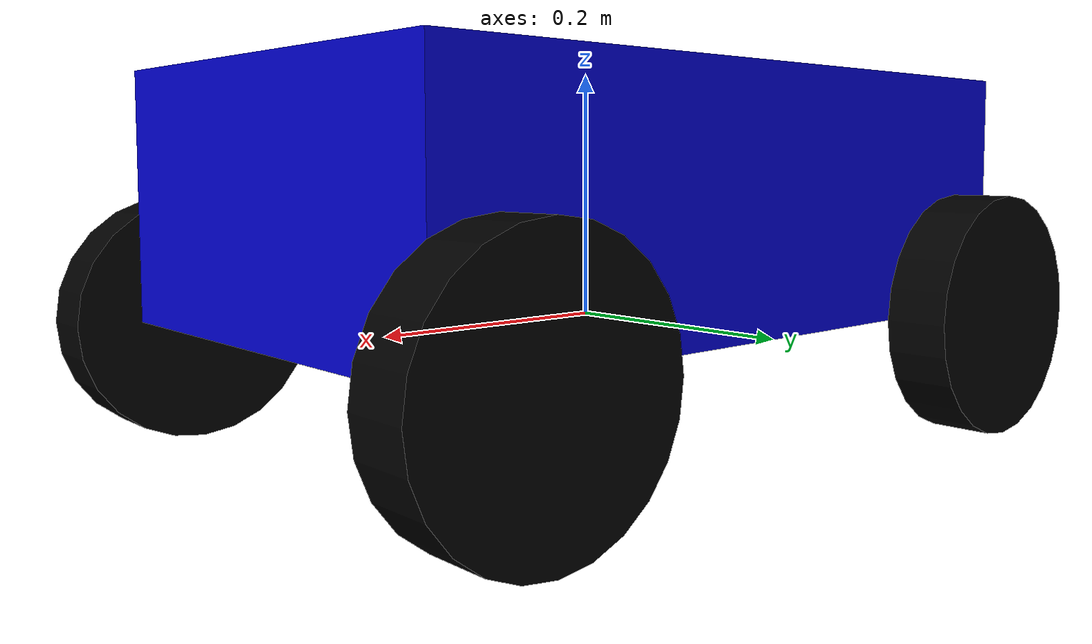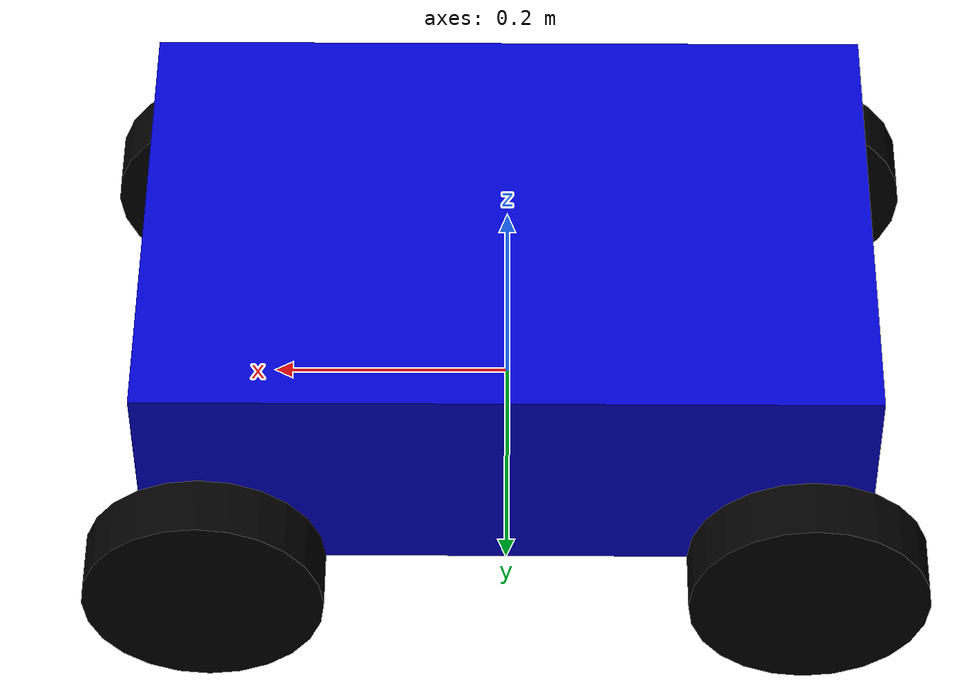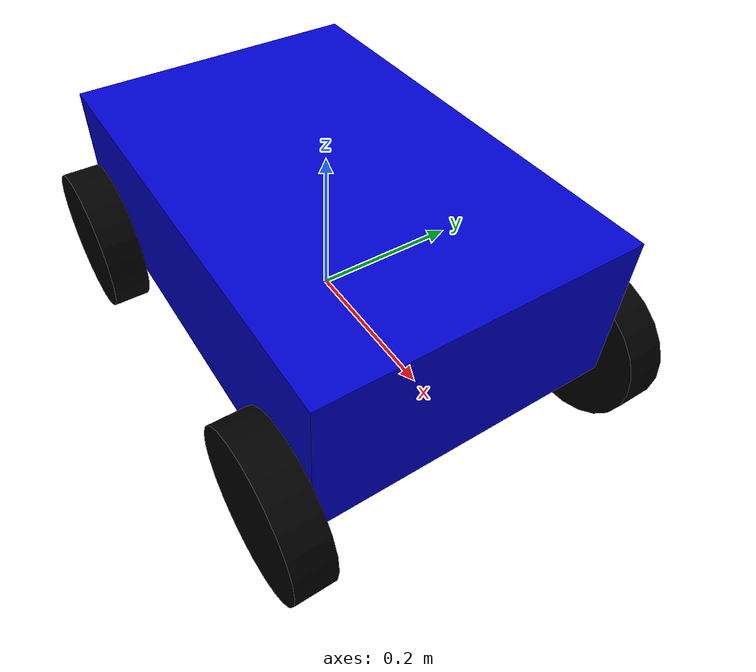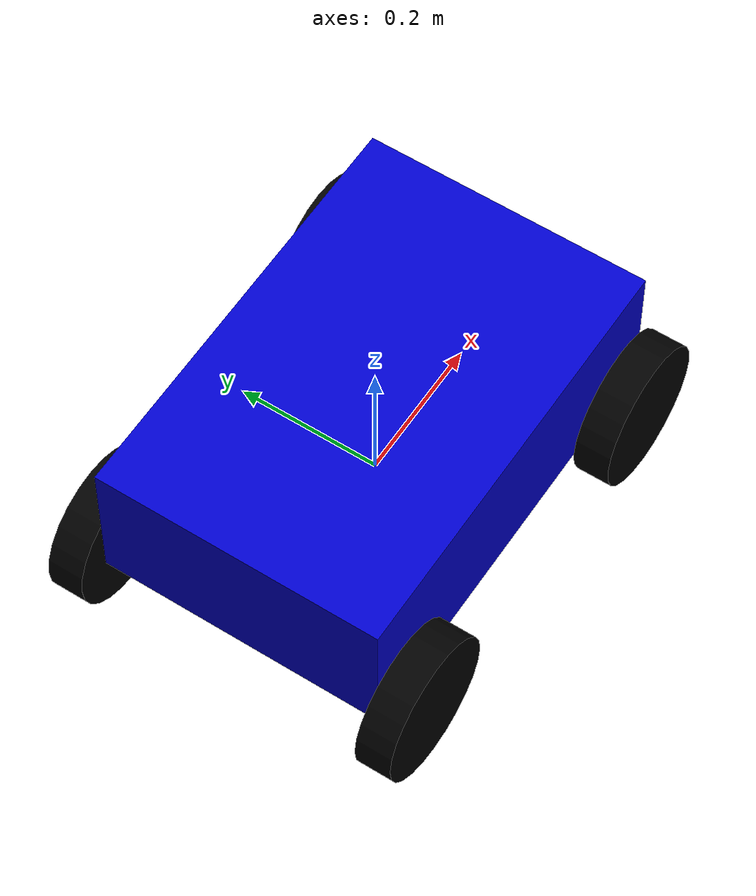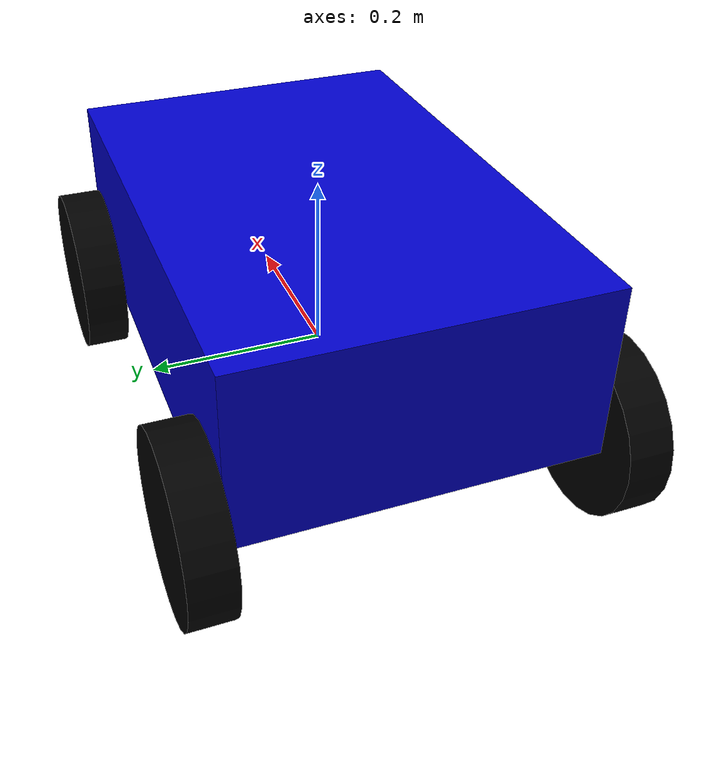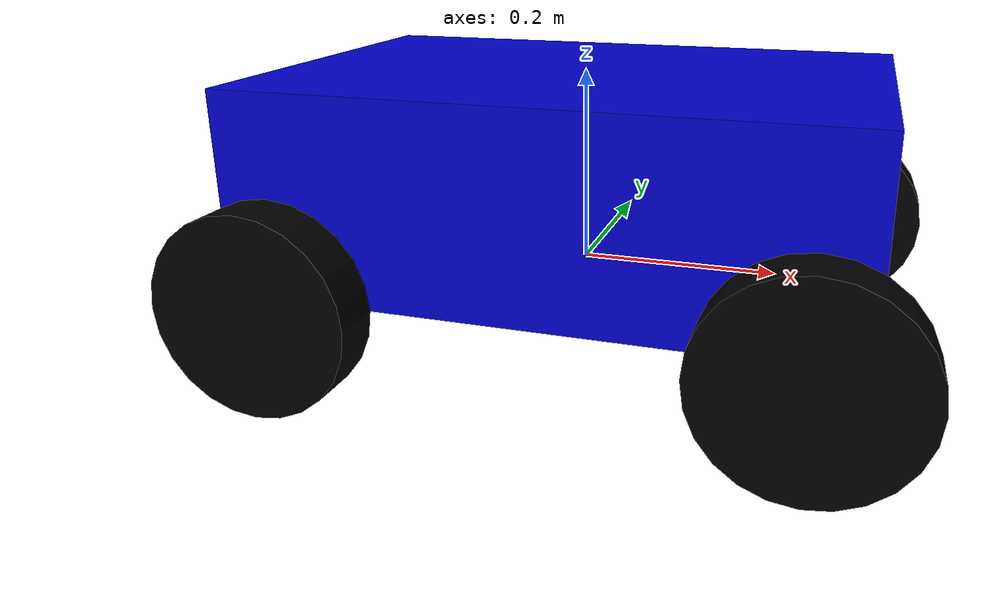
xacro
<?xml version="1.0"?>
<robot xmlns:xacro="http://www.ros.org/wiki/xacro">

    <!-- 机器人参数 -->
    <xacro:property name="chassis_length" value="0.6"/>
    <xacro:property name="chassis_width" value="0.4"/>
    <xacro:property name="chassis_height" value="0.2"/>
    <xacro:property name="wheel_radius" value="0.1"/>
    <xacro:property name="wheel_width" value="0.05"/>
    <xacro:property name="wheel_pos_x" value="0.25"/>  <!-- 前后轮距离车体中心的距离 -->

    <!-- 材质定义 -->
    <material name="blue">
        <color rgba="0 0 0.8 1"/>
    </material>
    <material name="black">
        <color rgba="0 0 0 1"/>
    </material>

    <!-- Base Footprint -->
    <link name="base_footprint">
        <inertial>
            <mass value="0.0001"/>
            <origin xyz="0 0 0" rpy="0 0 0"/>
            <inertia
                ixx="0.0001" ixy="0.0" ixz="0.0"
                iyy="0.0001" iyz="0.0"
                izz="0.0001"/>
        </inertial>
        <visual>
            <origin xyz="0 0 0" rpy="0 0 0"/>
            <geometry>
                <box size="0.001 0.001 0.001"/>
            </geometry>
        </visual>
        <collision>
            <origin xyz="0 0 0" rpy="0 0 0"/>
            <geometry>
                <box size="0.001 0.001 0.001"/>
            </geometry>
        </collision>
    </link>

    <!-- base_link 到 base_footprint 的固定关节 -->
    <joint name="base_link_to_footprint" type="fixed">
        <parent link="base_link"/>
        <child link="base_footprint"/>
        <origin xyz="0 0 -${wheel_radius}" rpy="0 0 0"/>
    </joint>

    <!-- 底盘 Base Link -->
    <link name="base_link">
        <visual>
            <geometry>
                <box size="${chassis_length} ${chassis_width} ${chassis_height}"/>
            </geometry>
            <material name="blue"/>
            <origin xyz="0 0 ${chassis_height/2}" rpy="0 0 0"/>
        </visual>
        <collision>
            <geometry>
                <box size="${chassis_length} ${chassis_width} ${chassis_height}"/>
            </geometry>
            <origin xyz="0 0 ${chassis_height/2}" rpy="0 0 0"/>
        </collision>
        <inertial>
            <mass value="5.0"/>
            <origin xyz="0 0 ${chassis_height/2}" rpy="0 0 0"/>
            <inertia
                ixx="${(1/12) * 5.0 * (chassis_width*chassis_width + chassis_height*chassis_height)}"
                ixy="0"
                ixz="0"
                iyy="${(1/12) * 5.0 * (chassis_length*chassis_length + chassis_height*chassis_height)}"
                iyz="0"
                izz="${(1/12) * 5.0 * (chassis_length*chassis_length + chassis_width*chassis_width)}"/>
        </inertial>
    </link>

    <!-- 车轮宏定义 -->
    <xacro:macro name="wheel" params="prefix x_offset y_offset">
        <!-- 轮子link -->
        <link name="${prefix}_wheel">
            <visual>
                <geometry>
                    <cylinder radius="${wheel_radius}" length="${wheel_width}"/>
                </geometry>
                <material name="black"/>
                <origin xyz="0 0 0" rpy="${pi/2} 0 0"/>
            </visual>
            <collision>
                <geometry>
                    <cylinder radius="${wheel_radius}" length="${wheel_width}"/>
                </geometry>
                <origin xyz="0 0 0" rpy="${pi/2} 0 0"/>
            </collision>
            <inertial>
                <mass value="0.5"/>
                <origin xyz="0 0 0" rpy="${pi/2} 0 0"/>
                <inertia
                    ixx="${(1/12) * 0.5 * (3*wheel_radius*wheel_radius + wheel_width*wheel_width)}"
                    ixy="0"
                    ixz="0"
                    iyy="${(1/12) * 0.5 * (3*wheel_radius*wheel_radius + wheel_width*wheel_width)}"
                    iyz="0"
                    izz="${(1/2) * 0.5 * (wheel_radius*wheel_radius)}"/>
            </inertial>
        </link>

        <joint name="${prefix}_wheel_joint" type="continuous">
            <parent link="base_link"/>
            <child link="${prefix}_wheel"/>
            <origin xyz="${x_offset} ${y_offset} 0" rpy="0 0 0"/>
            <axis xyz="0 1 0"/>
        </joint>

        <!-- Gazebo specific wheel properties -->
        <gazebo reference="${prefix}_wheel">
            <material>Gazebo/Black</material>
            <mu1>0.8</mu1>
            <mu2>0.8</mu2>
            <kp>500000.0</kp>
            <kd>50.0</kd>
            <minDepth>0.001</minDepth>
            <maxVel>1.5</maxVel>
            <fdir1>1 0 0</fdir1>
        </gazebo>

        <!-- 添加传动装置 -->
        <transmission name="${prefix}_wheel_trans">
            <type>transmission_interface/SimpleTransmission</type>
            <joint name="${prefix}_wheel_joint">
                <hardwareInterface>hardware_interface/VelocityJointInterface</hardwareInterface>
            </joint>
            <actuator name="${prefix}_wheel_motor">
                <mechanicalReduction>1</mechanicalReduction>
            </actuator>
        </transmission>
    </xacro:macro>

    <!-- 使用wheel_pos_x参数统一轮子位置 -->
    <xacro:wheel prefix="front_left" x_offset="${wheel_pos_x}" y_offset="${chassis_width/2 + wheel_width/2}"/>
    <xacro:wheel prefix="front_right" x_offset="${wheel_pos_x}" y_offset="-${chassis_width/2 + wheel_width/2}"/>
    <xacro:wheel prefix="rear_left" x_offset="-${wheel_pos_x}" y_offset="${chassis_width/2 + wheel_width/2}"/>
    <xacro:wheel prefix="rear_right" x_offset="-${wheel_pos_x}" y_offset="-${chassis_width/2 + wheel_width/2}"/>

    <gazebo reference="base_link">
        <material>Gazebo/Blue</material>
        <mu1>0.2</mu1>
        <mu2>0.2</mu2>
        <kp>1000000.0</kp>
        <kd>100.0</kd>
    </gazebo>

    <!-- 差速驱动插件配置 -->
    <gazebo>
        <plugin name="diff_drive" filename="libgazebo_ros_diff_drive.so">
            <!-- 基本配置 -->
            <ros>
                <namespace>/</namespace>
                <remapping>cmd_vel:=cmd_vel</remapping>
                <remapping>odom:=odom</remapping>
            </ros>

            <!-- 轮子配置 -->
            <left_joint>front_left_wheel_joint</left_joint>
            <right_joint>front_right_wheel_joint</right_joint>
            <wheel_separation>0.4</wheel_separation>
            <wheel_diameter>0.2</wheel_diameter>

            <!-- 发布TF和里程计 -->
            <publish_odom>true</publish_odom>
            <publish_odom_tf>true</publish_odom_tf>
            <publish_wheel_tf>true</publish_wheel_tf>

            <odometry_frame>odom</odometry_frame>
            <robot_base_frame>base_link</robot_base_frame>
        </plugin>
    </gazebo>

</robot>
